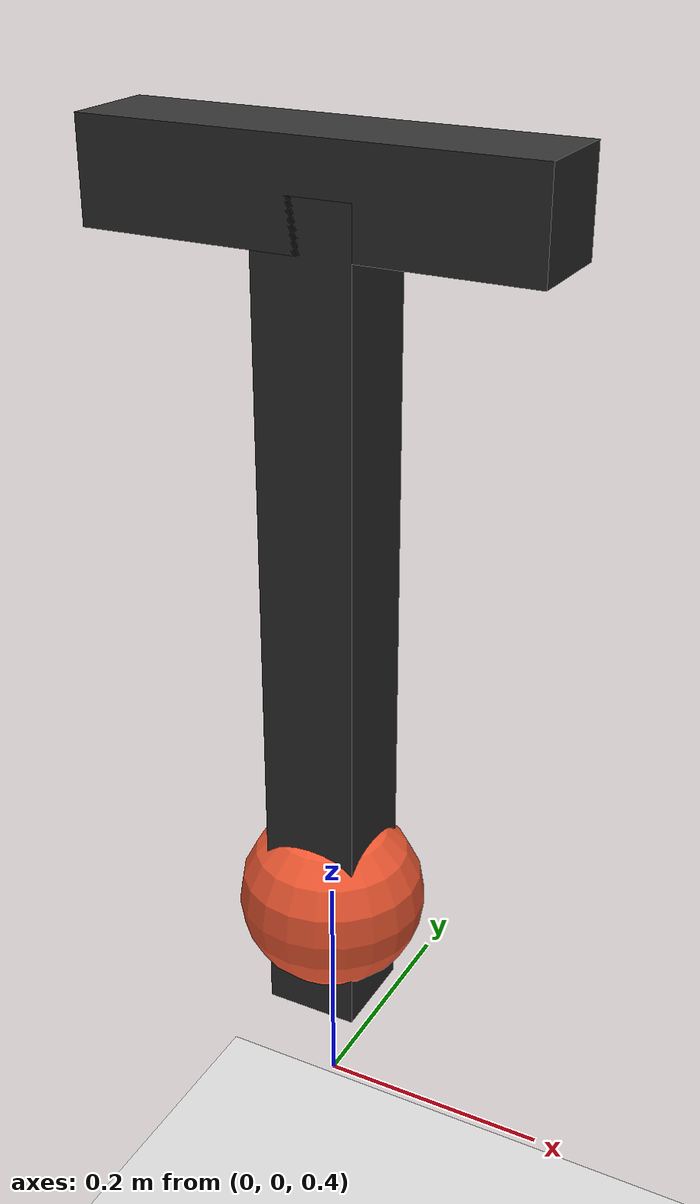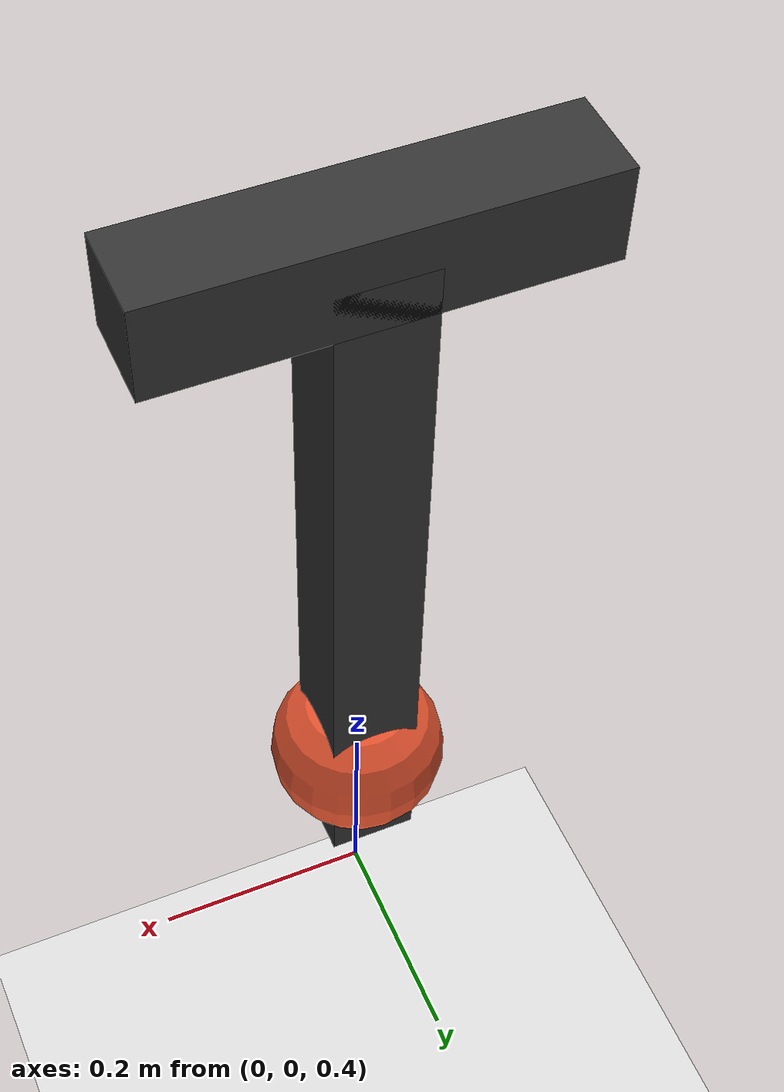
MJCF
<mujoco model="sensor_pendulum">
    <!--
        v0.6 学习目标：
        1. 理解 MJCF 中 sensor 元素如何定义
        2. 理解 data.sensordata 如何读取
        3. 理解 logging 对分析和控制的重要性
    -->

    <compiler angle="degree"/>
    <option timestep="0.002" gravity="0 0 -9.81"/>

    <worldbody>
        <light name="top_light" pos="0 0 4"/>

        <geom
            name="floor"
            type="plane"
            size="3 3 0.1"
            rgba="0.85 0.85 0.85 1"
        />

        <body name="support" pos="0 0 1.2">
            <geom
                name="support_vertical"
                type="box"
                pos="0 0 -0.35"
                size="0.04 0.04 0.35"
                rgba="0.2 0.2 0.2 1"
                contype="0"
                conaffinity="0"
            />
            <geom
                name="support_horizontal"
                type="box"
                pos="0 0 0"
                size="0.18 0.04 0.04"
                rgba="0.2 0.2 0.2 1"
                contype="0"
                conaffinity="0"
            />
        </body>

        <body name="pendulum" pos="0 0 1.2">
            <joint
                name="pendulum_hinge"
                type="hinge"
                axis="0 1 0"
                damping="0.12"
                armature="0.02"
                limited="true"
                range="-120 120"
            />

            <geom
                name="rod_geom"
                type="capsule"
                fromto="0 0 0 0 0 -0.6"
                size="0.03"
                mass="0.08"
                rgba="0.1 0.6 0.9 1"
            />

            <body name="bob" pos="0 0 -0.6">
                <geom
                    name="bob_geom"
                    type="sphere"
                    size="0.08"
                    mass="0.12"
                    rgba="0.95 0.35 0.2 1"
                />
            </body>
        </body>
    </worldbody>

    <actuator>
        <motor
            name="pendulum_motor"
            joint="pendulum_hinge"
            gear="1"
            ctrllimited="true"
            ctrlrange="-2 2"
        />
    </actuator>

    <sensor>
        <jointpos name="pendulum_joint_pos" joint="pendulum_hinge"/>
        <jointvel name="pendulum_joint_vel" joint="pendulum_hinge"/>
        <actuatorfrc name="pendulum_motor_force" actuator="pendulum_motor"/>
    </sensor>

    <keyframe>
        <key name="tilted_start" qpos="30"/>
    </keyframe>
</mujoco>
